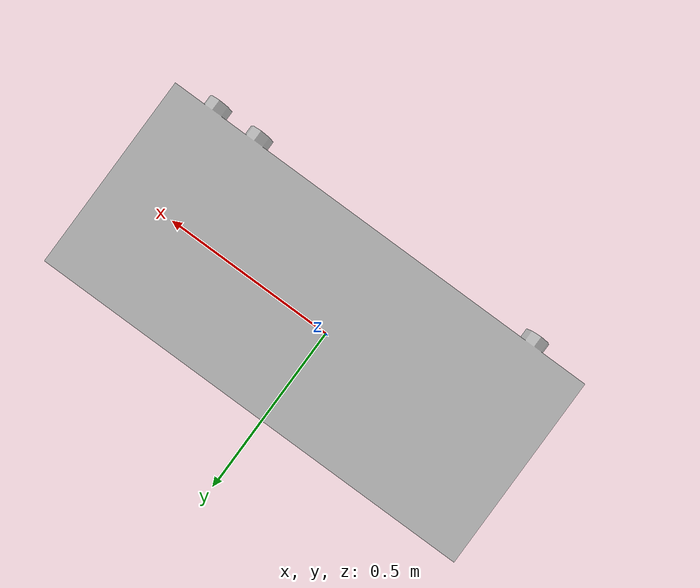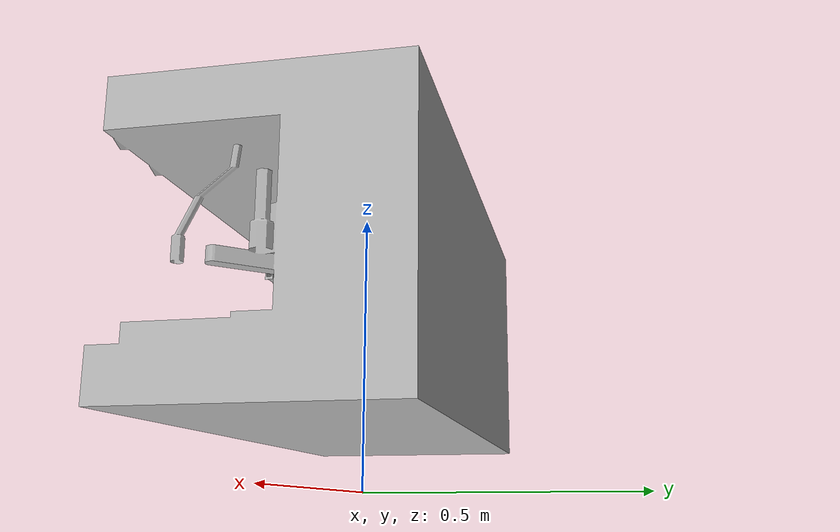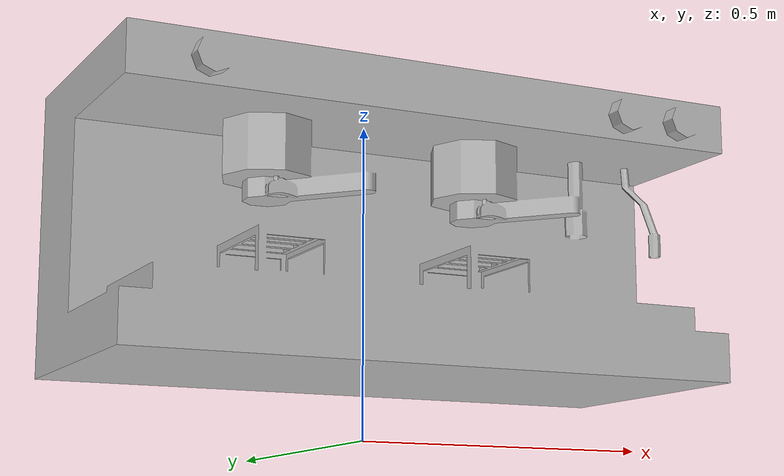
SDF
<?xml version="1.0" ?>
<sdf version="1.5">
  <model name="espresso_machine">
    <static>true</static>
    <pose>0 0 0 0 0 0</pose>
    <link name="body">
      <inertial>
        <mass>5</mass>
        <inertia>
          <ixx>1.0</ixx>
          <ixy>0.0</ixy>
          <iyy>1.0</iyy>
          <ixz>0.0</ixz>
          <iyz>0.0</iyz>
          <izz>1.0</izz>
        </inertia>
        <pose>0 0 0 0 0 0</pose>
      </inertial>
      <collision name="collision">
        <geometry>
          <mesh>
            <uri>model://espresso_machine/meshes/espresso_machine.dae</uri>
            <scale>0.5 0.5 0.5</scale>
          </mesh>
        </geometry>
      </collision>
      <visual name="visual">
        <geometry>
          <mesh>
            <uri>model://espresso_machine/meshes/espresso_machine.dae</uri>
            <scale>0.5 0.5 0.5</scale>
          </mesh>
        </geometry>
      </visual>
    </link>
  </model>
</sdf>
